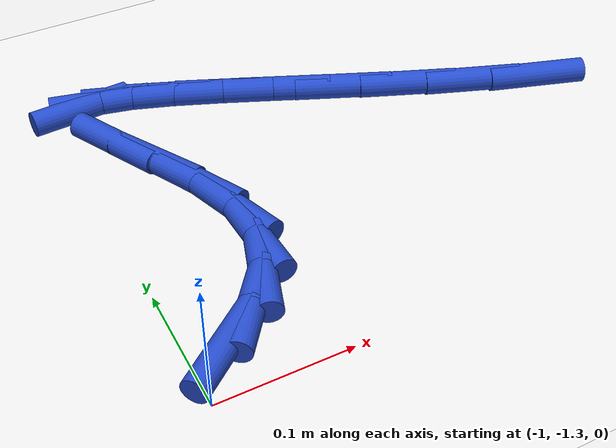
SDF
<sdf version="1.6">
 <world name="default">
  <model name="ground_plane">
   <static>1</static>
   <link name="link">
    <collision name="collision">
     <geometry><plane><normal>0 0 1</normal><size>100 100</size></plane></geometry>
     <surface><friction><ode><mu>100</mu><mu2>50</mu2></ode></friction></surface>
    </collision>
    <visual name="visual">
     <cast_shadows>0</cast_shadows>
     <geometry><plane><normal>0 0 1</normal><size>100 100</size></plane></geometry>
     <material>
      <script><uri>file://media/materials/scripts/gazebo.material</uri><name>Gazebo/WhiteGlow</name></script>
     </material>
    </visual>
   </link>
  </model>
  <model name="line">
   <link name="link_164">
    <pose>-0.976631804092859 -1.2681858878761463 0.01 0 1.57 0.6648077737374416</pose>
    <collision name="collision">
     <geometry><cylinder><radius>0.01</radius><length>0.08</length></cylinder></geometry>
    </collision>
    <visual name="visual">
     <material>
      <script><name>Gazebo/Blue</name><uri>file://media/materials/scripts/gazebo.material</uri></script>
     </material>
     <geometry><cylinder><radius>0.01</radius><length>0.08</length></cylinder></geometry>
    </visual>
   </link>
   <link name="link_165">
    <pose>-0.9473442590675377 -1.2452292115706314 0.01 0 1.57 0.9176252458246891</pose>
    <collision name="collision">
     <geometry><cylinder><radius>0.01</radius><length>0.08</length></cylinder></geometry>
    </collision>
    <visual name="visual">
     <material>
      <script><name>Gazebo/Blue</name><uri>file://media/materials/scripts/gazebo.material</uri></script>
     </material>
     <geometry><cylinder><radius>0.01</radius><length>0.08</length></cylinder></geometry>
    </visual>
   </link>
   <link name="link_166">
    <pose>-0.9267359892136198 -1.2182980483289727 0.01 0 1.57 1.2444990448003739</pose>
    <collision name="collision">
     <geometry><cylinder><radius>0.01</radius><length>0.08</length></cylinder></geometry>
    </collision>
    <visual name="visual">
     <material>
      <script><name>Gazebo/Blue</name><uri>file://media/materials/scripts/gazebo.material</uri></script>
     </material>
     <geometry><cylinder><radius>0.01</radius><length>0.08</length></cylinder></geometry>
    </visual>
   </link>
   <link name="link_167">
    <pose>-0.9163058938461304 -1.187475611919644 0.01 0 1.57 -1.5349657280771631</pose>
    <collision name="collision">
     <geometry><cylinder><radius>0.01</radius><length>0.08</length></cylinder></geometry>
    </collision>
    <visual name="visual">
     <material>
      <script><name>Gazebo/Blue</name><uri>file://media/materials/scripts/gazebo.material</uri></script>
     </material>
     <geometry><cylinder><radius>0.01</radius><length>0.08</length></cylinder></geometry>
    </visual>
   </link>
   <link name="link_168">
    <pose>-0.9175471669445773 -1.1528476151212268 0.01 0 1.57 -1.2490576074065747</pose>
    <collision name="collision">
     <geometry><cylinder><radius>0.01</radius><length>0.08</length></cylinder></geometry>
    </collision>
    <visual name="visual">
     <material>
      <script><name>Gazebo/Blue</name><uri>file://media/materials/scripts/gazebo.material</uri></script>
     </material>
     <geometry><cylinder><radius>0.01</radius><length>0.08</length></cylinder></geometry>
    </visual>
   </link>
   <link name="link_169">
    <pose>-0.9300516884511899 -1.115332570637682 0.01 0 1.57 -1.1073791969051647</pose>
    <collision name="collision">
     <geometry><cylinder><radius>0.01</radius><length>0.08</length></cylinder></geometry>
    </collision>
    <visual name="visual">
     <material>
      <script><name>Gazebo/Blue</name><uri>file://media/materials/scripts/gazebo.material</uri></script>
     </material>
     <geometry><cylinder><radius>0.01</radius><length>0.08</length></cylinder></geometry>
    </visual>
   </link>
   <link name="link_170">
    <pose>-0.9487651442826519 -1.0778840837257617 0.01 0 1.57 -1.0589130282778711</pose>
    <collision name="collision">
     <geometry><cylinder><radius>0.01</radius><length>0.08</length></cylinder></geometry>
    </collision>
    <visual name="visual">
     <material>
      <script><name>Gazebo/Blue</name><uri>file://media/materials/scripts/gazebo.material</uri></script>
     </material>
     <geometry><cylinder><radius>0.01</radius><length>0.08</length></cylinder></geometry>
    </visual>
   </link>
   <link name="link_171">
    <pose>-0.9679367477680411 -1.0437608235651745 0.01 0 1.57 -1.1039791805595391</pose>
    <collision name="collision">
     <geometry><cylinder><radius>0.01</radius><length>0.08</length></cylinder></geometry>
    </collision>
    <visual name="visual">
     <material>
      <script><name>Gazebo/Blue</name><uri>file://media/materials/scripts/gazebo.material</uri></script>
     </material>
     <geometry><cylinder><radius>0.01</radius><length>0.08</length></cylinder></geometry>
    </visual>
   </link>
   <link name="link_174">
    <pose>-0.9783754403624336 -0.9889638646151327 0.01 0 1.57 0.06652814992864492</pose>
    <collision name="collision">
     <geometry><cylinder><radius>0.01</radius><length>0.08</length></cylinder></geometry>
    </collision>
    <visual name="visual">
     <material>
      <script><name>Gazebo/Blue</name><uri>file://media/materials/scripts/gazebo.material</uri></script>
     </material>
     <geometry><cylinder><radius>0.01</radius><length>0.08</length></cylinder></geometry>
    </visual>
   </link>
   <link name="link_175">
    <pose>-0.9617854302765169 -0.9878585307214444 0.01 0 1.57 -0.22181777973203806</pose>
    <collision name="collision">
     <geometry><cylinder><radius>0.01</radius><length>0.08</length></cylinder></geometry>
    </collision>
    <visual name="visual">
     <material>
      <script><name>Gazebo/Blue</name><uri>file://media/materials/scripts/gazebo.material</uri></script>
     </material>
     <geometry><cylinder><radius>0.01</radius><length>0.08</length></cylinder></geometry>
    </visual>
   </link>
   <link name="link_176">
    <pose>-0.9368409361166944 -0.9934842345210432 0.01 0 1.57 -0.3338349176180781</pose>
    <collision name="collision">
     <geometry><cylinder><radius>0.01</radius><length>0.08</length></cylinder></geometry>
    </collision>
    <visual name="visual">
     <material>
      <script><name>Gazebo/Blue</name><uri>file://media/materials/scripts/gazebo.material</uri></script>
     </material>
     <geometry><cylinder><radius>0.01</radius><length>0.08</length></cylinder></geometry>
    </visual>
   </link>
   <link name="link_177">
    <pose>-0.9047115111137314 -1.0046272128487643 0.01 0 1.57 -0.38476073289937146</pose>
    <collision name="collision">
     <geometry><cylinder><radius>0.01</radius><length>0.08</length></cylinder></geometry>
    </collision>
    <visual name="visual">
     <material>
      <script><name>Gazebo/Blue</name><uri>file://media/materials/scripts/gazebo.material</uri></script>
     </material>
     <geometry><cylinder><radius>0.01</radius><length>0.08</length></cylinder></geometry>
    </visual>
   </link>
   <link name="link_178">
    <pose>-0.8665667084983919 -1.0200737025394429 0.01 0 1.57 -0.407084460802576</pose>
    <collision name="collision">
     <geometry><cylinder><radius>0.01</radius><length>0.08</length></cylinder></geometry>
    </collision>
    <visual name="visual">
     <material>
      <script><name>Gazebo/Blue</name><uri>file://media/materials/scripts/gazebo.material</uri></script>
     </material>
     <geometry><cylinder><radius>0.01</radius><length>0.08</length></cylinder></geometry>
    </visual>
   </link>
   <link name="link_179">
    <pose>-0.8235760815014435 -1.0386099404279134 0.01 0 1.57 -0.4123286926097246</pose>
    <collision name="collision">
     <geometry><cylinder><radius>0.01</radius><length>0.08</length></cylinder></geometry>
    </collision>
    <visual name="visual">
     <material>
      <script><name>Gazebo/Blue</name><uri>file://media/materials/scripts/gazebo.material</uri></script>
     </material>
     <geometry><cylinder><radius>0.01</radius><length>0.08</length></cylinder></geometry>
    </visual>
   </link>
   <link name="link_180">
    <pose>-0.7769091833536508 -1.0590221633490118 0.01 0 1.57 -0.4048924374661003</pose>
    <collision name="collision">
     <geometry><cylinder><radius>0.01</radius><length>0.08</length></cylinder></geometry>
    </collision>
    <visual name="visual">
     <material>
      <script><name>Gazebo/Blue</name><uri>file://media/materials/scripts/gazebo.material</uri></script>
     </material>
     <geometry><cylinder><radius>0.01</radius><length>0.08</length></cylinder></geometry>
    </visual>
   </link>
   <link name="link_181">
    <pose>-0.7277355672857789 -1.080096608137573 0.01 0 1.57 -0.38593192847043534</pose>
    <collision name="collision">
     <geometry><cylinder><radius>0.01</radius><length>0.08</length></cylinder></geometry>
    </collision>
    <visual name="visual">
     <material>
      <script><name>Gazebo/Blue</name><uri>file://media/materials/scripts/gazebo.material</uri></script>
     </material>
     <geometry><cylinder><radius>0.01</radius><length>0.08</length></cylinder></geometry>
    </visual>
   </link>
   <link name="link_182">
    <pose>-0.6772247865285923 -1.1006195116284319 0.01 0 1.57 -0.3544943595342688</pose>
    <collision name="collision">
     <geometry><cylinder><radius>0.01</radius><length>0.08</length></cylinder></geometry>
    </collision>
    <visual name="visual">
     <material>
      <script><name>Gazebo/Blue</name><uri>file://media/materials/scripts/gazebo.material</uri></script>
     </material>
     <geometry><cylinder><radius>0.01</radius><length>0.08</length></cylinder></geometry>
    </visual>
   </link>
   <link name="link_183">
    <pose>-0.6265463943128585 -1.119377110656423 0.01 0 1.57 -0.3075479640315261</pose>
    <collision name="collision">
     <geometry><cylinder><radius>0.01</radius><length>0.08</length></cylinder></geometry>
    </collision>
    <visual name="visual">
     <material>
      <script><name>Gazebo/Blue</name><uri>file://media/materials/scripts/gazebo.material</uri></script>
     </material>
     <geometry><cylinder><radius>0.01</radius><length>0.08</length></cylinder></geometry>
    </visual>
   </link>
  </model>
 </world>
</sdf>
